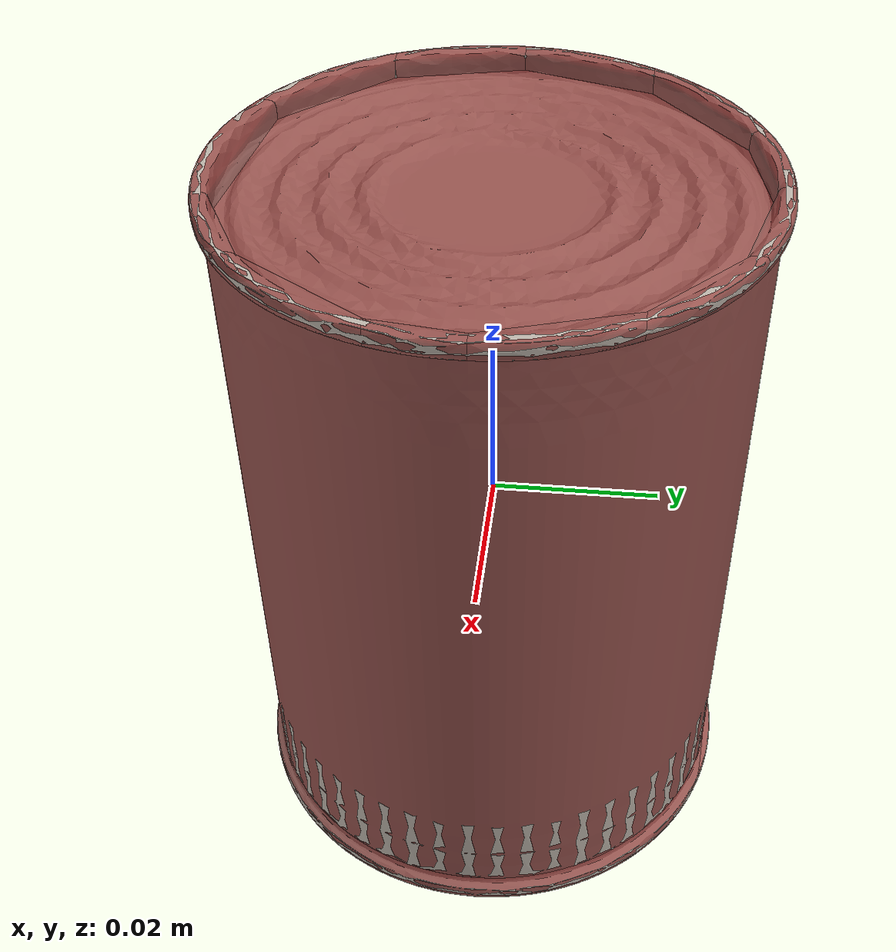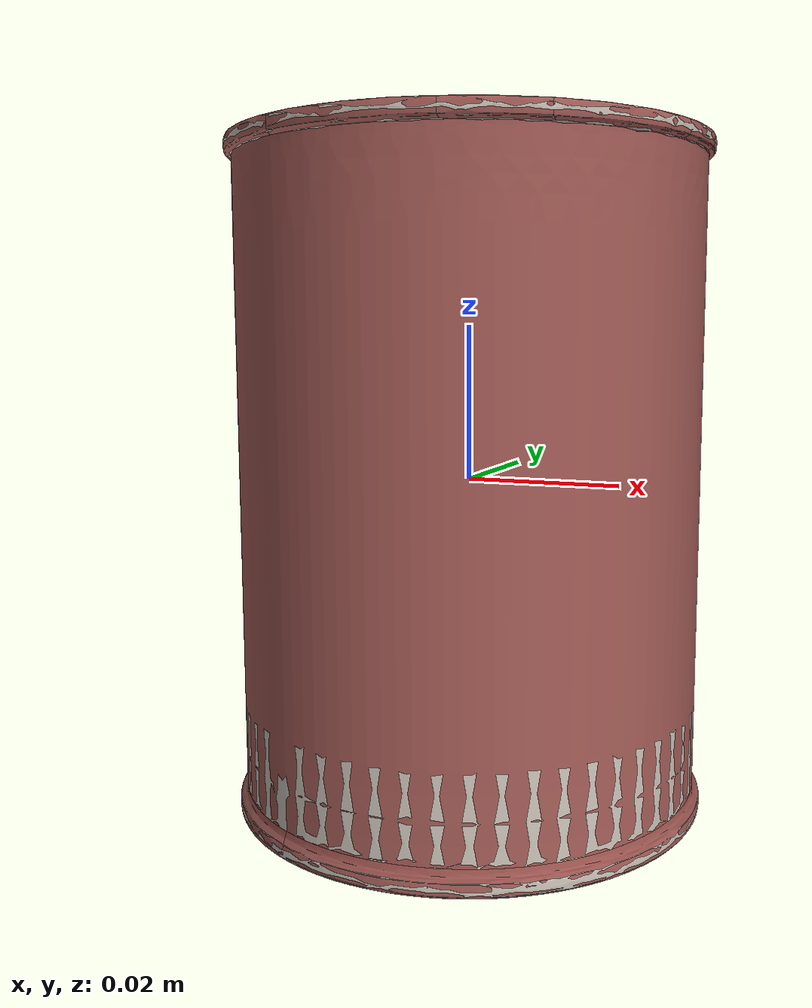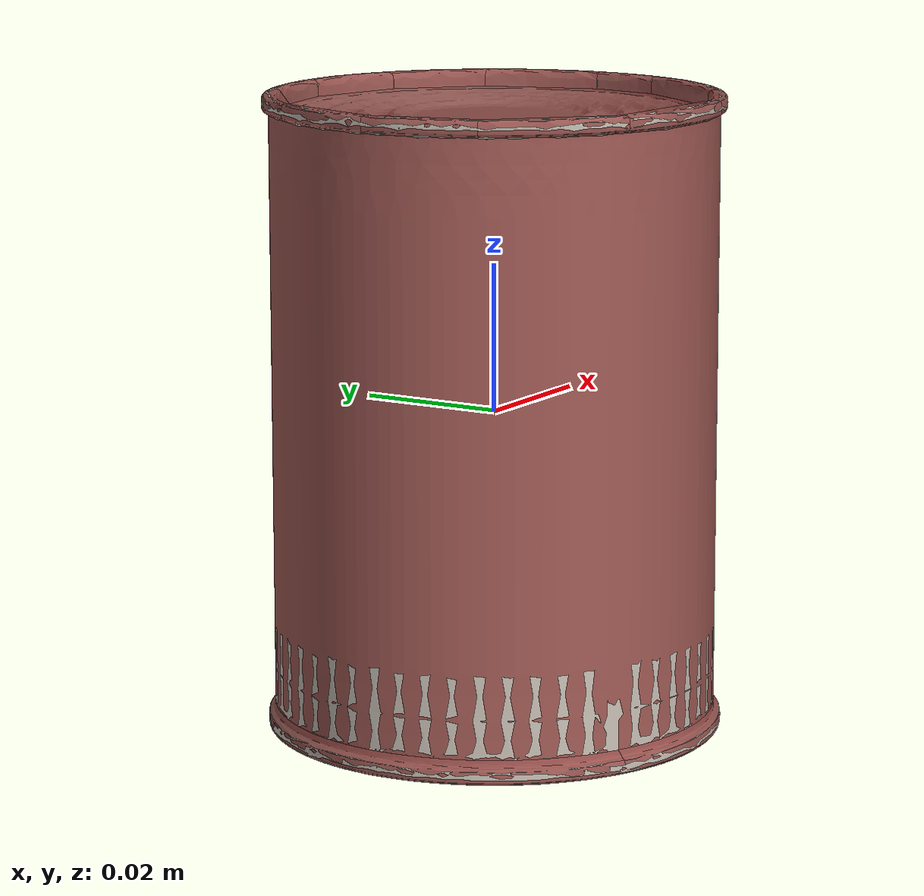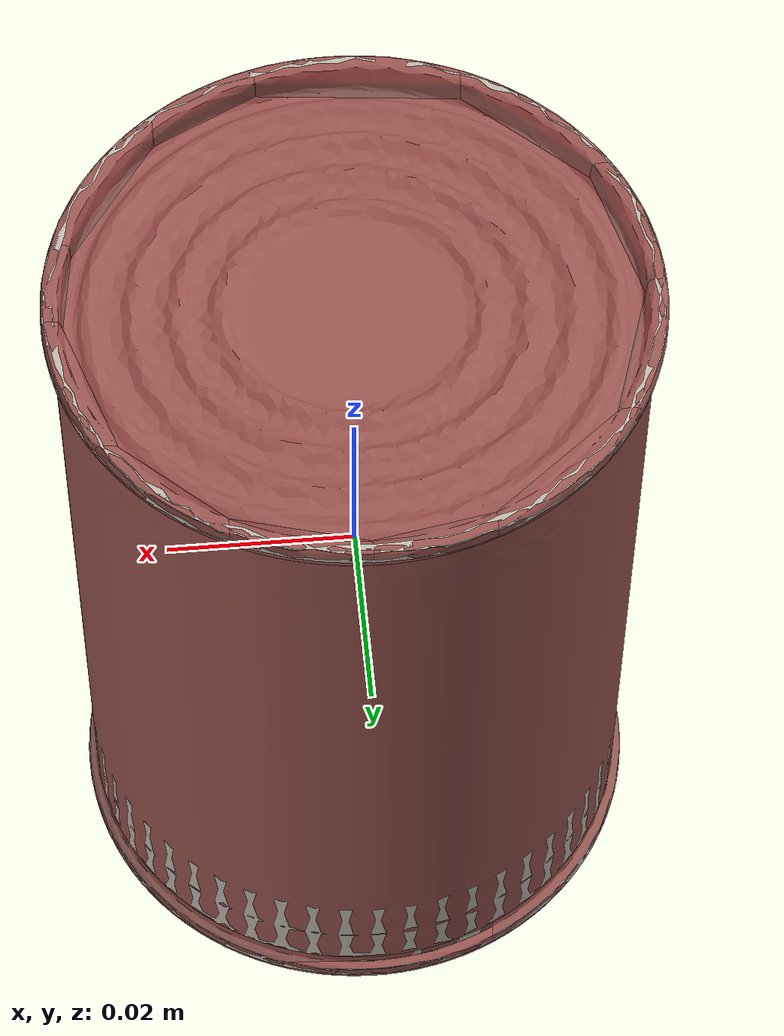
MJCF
<?xml version='1.0' encoding='utf-8'?>
<mujoco model="canned_food_2">
  <asset>
    <mesh file="visual/model_normalized_0.obj" name="model_normalized_0_vis" scale="0.08549999999999998 0.08549999999999998 0.08549999999999998" refquat="1.0 0.0 0.0 0.0" />
    <texture type="2d" name="image0" file="visual/image0.png" />
    <material name="DefaultMaterial_1001" texture="image0" specular="0.5" shininess="0.25" />
    <mesh file="collision/collision_mesh_collision_0.obj" name="canned_collision_mesh_0" scale="0.08549999999999998 0.08549999999999998 0.08549999999999998" refquat="1.0 0.0 0.0 0.0" />
    <mesh file="collision/collision_mesh_collision_1.obj" name="canned_collision_mesh_1" scale="0.08549999999999998 0.08549999999999998 0.08549999999999998" refquat="1.0 0.0 0.0 0.0" />
    <mesh file="collision/collision_mesh_collision_2.obj" name="canned_collision_mesh_2" scale="0.08549999999999998 0.08549999999999998 0.08549999999999998" refquat="1.0 0.0 0.0 0.0" />
    <mesh file="collision/collision_mesh_collision_3.obj" name="canned_collision_mesh_3" scale="0.08549999999999998 0.08549999999999998 0.08549999999999998" refquat="1.0 0.0 0.0 0.0" />
    <mesh file="collision/collision_mesh_collision_4.obj" name="canned_collision_mesh_4" scale="0.08549999999999998 0.08549999999999998 0.08549999999999998" refquat="1.0 0.0 0.0 0.0" />
    <mesh file="collision/collision_mesh_collision_5.obj" name="canned_collision_mesh_5" scale="0.08549999999999998 0.08549999999999998 0.08549999999999998" refquat="1.0 0.0 0.0 0.0" />
    <mesh file="collision/collision_mesh_collision_6.obj" name="canned_collision_mesh_6" scale="0.08549999999999998 0.08549999999999998 0.08549999999999998" refquat="1.0 0.0 0.0 0.0" />
    <mesh file="collision/collision_mesh_collision_7.obj" name="canned_collision_mesh_7" scale="0.08549999999999998 0.08549999999999998 0.08549999999999998" refquat="1.0 0.0 0.0 0.0" />
    <mesh file="collision/collision_mesh_collision_8.obj" name="canned_collision_mesh_8" scale="0.08549999999999998 0.08549999999999998 0.08549999999999998" refquat="1.0 0.0 0.0 0.0" />
    <mesh file="collision/collision_mesh_collision_9.obj" name="canned_collision_mesh_9" scale="0.08549999999999998 0.08549999999999998 0.08549999999999998" refquat="1.0 0.0 0.0 0.0" />
    <mesh file="collision/collision_mesh_collision_10.obj" name="canned_collision_mesh_10" scale="0.08549999999999998 0.08549999999999998 0.08549999999999998" refquat="1.0 0.0 0.0 0.0" />
    <mesh file="collision/collision_mesh_collision_11.obj" name="canned_collision_mesh_11" scale="0.08549999999999998 0.08549999999999998 0.08549999999999998" refquat="1.0 0.0 0.0 0.0" />
    <mesh file="collision/collision_mesh_collision_12.obj" name="canned_collision_mesh_12" scale="0.08549999999999998 0.08549999999999998 0.08549999999999998" refquat="1.0 0.0 0.0 0.0" />
    <mesh file="collision/collision_mesh_collision_13.obj" name="canned_collision_mesh_13" scale="0.08549999999999998 0.08549999999999998 0.08549999999999998" refquat="1.0 0.0 0.0 0.0" />
    <mesh file="collision/collision_mesh_collision_14.obj" name="canned_collision_mesh_14" scale="0.08549999999999998 0.08549999999999998 0.08549999999999998" refquat="1.0 0.0 0.0 0.0" />
    <mesh file="collision/collision_mesh_collision_15.obj" name="canned_collision_mesh_15" scale="0.08549999999999998 0.08549999999999998 0.08549999999999998" refquat="1.0 0.0 0.0 0.0" />
  </asset>
  <default>
    <default class="region">
      <geom group="1" conaffinity="0" contype="0" rgba="0 1 0 0" mass="0" />
    </default>
    <default class="collision">
      <geom group="0" rgba="0.5 0 0 0.5" density="1207.312043323" />
    </default>
  </default>
  <worldbody>
    <body>
      <body name="object">
        <geom solimp="0.998 0.998 0.001" solref="0.001 1" density="120.731204332" friction="0.95 0.3 0.1" type="mesh" mesh="model_normalized_0_vis" conaffinity="0" contype="0" group="1" material="DefaultMaterial_1001" />
        <geom class="region" name="reg_bbox" type="box" pos="0.0 -2.0348999999968136e-07 -1.2824999993249483e-09" size="0.03064919696999999 0.03064934744999999 0.04274999871749999" />
        <geom mesh="canned_collision_mesh_0" type="mesh" class="collision" />
        <geom mesh="canned_collision_mesh_1" type="mesh" class="collision" />
        <geom mesh="canned_collision_mesh_2" type="mesh" class="collision" />
        <geom mesh="canned_collision_mesh_3" type="mesh" class="collision" />
        <geom mesh="canned_collision_mesh_4" type="mesh" class="collision" />
        <geom mesh="canned_collision_mesh_5" type="mesh" class="collision" />
        <geom mesh="canned_collision_mesh_6" type="mesh" class="collision" />
        <geom mesh="canned_collision_mesh_7" type="mesh" class="collision" />
        <geom mesh="canned_collision_mesh_8" type="mesh" class="collision" />
        <geom mesh="canned_collision_mesh_9" type="mesh" class="collision" />
        <geom mesh="canned_collision_mesh_10" type="mesh" class="collision" />
        <geom mesh="canned_collision_mesh_11" type="mesh" class="collision" />
        <geom mesh="canned_collision_mesh_12" type="mesh" class="collision" />
        <geom mesh="canned_collision_mesh_13" type="mesh" class="collision" />
        <geom mesh="canned_collision_mesh_14" type="mesh" class="collision" />
        <geom mesh="canned_collision_mesh_15" type="mesh" class="collision" />
      </body>
    </body>
  </worldbody>
</mujoco>
